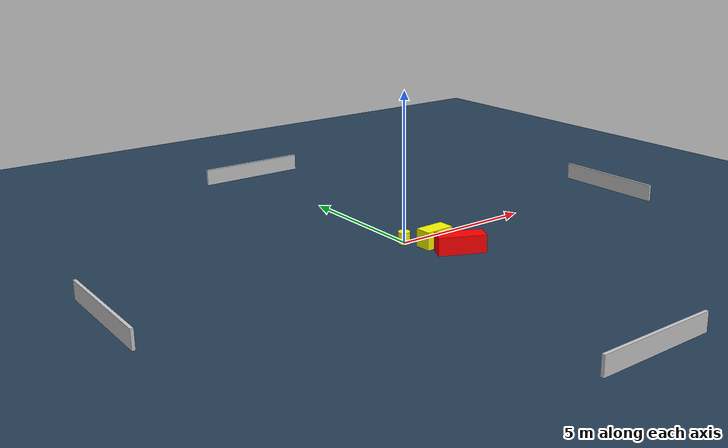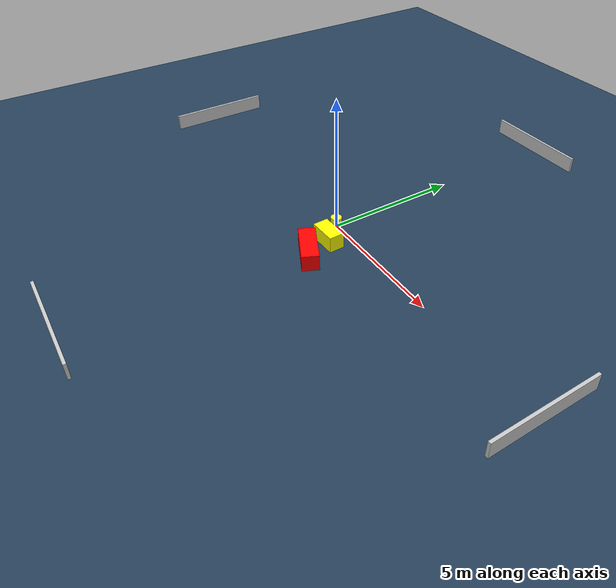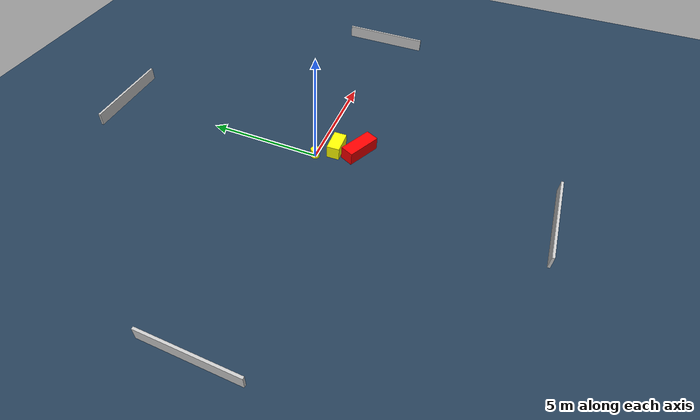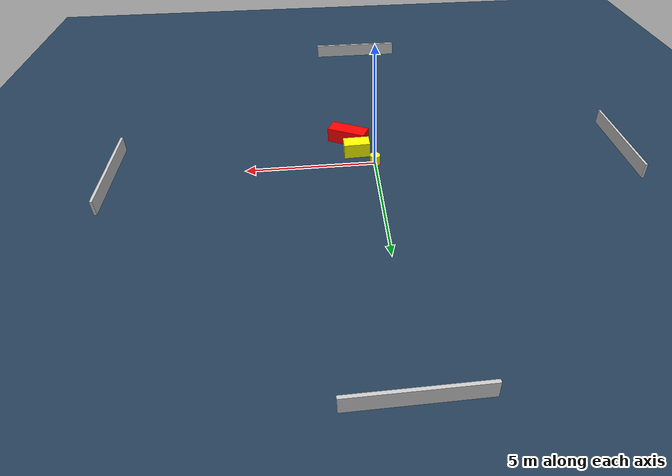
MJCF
<?xml version="1.0" ?>
<mujoco model="generated_environment">
  <option timestep="0.01" integrator="RK4" cone="elliptic"/>
  <default>
    <geom density="1"/>
  </default>
  <asset>
    <texture builtin="gradient" height="3072" name="skybox" rgb1="0.3 0.5 0.7" rgb2="0 0 0" type="skybox" width="512"/>
    <texture builtin="checker" height="300" name="groundplane" rgb1="0.2 0.3 0.4" rgb2="0.1 0.2 0.3" type="2d" width="300"/>
    <material name="groundplane" reflectance="0.2" texrepeat="5 5" texture="groundplane"/>
  </asset>
  <worldbody>
    <light dir="0 0 -1" directional="true" pos="0 0 1.5"/>
    <geom condim="3" friction="0.5 0.005 0.001" material="groundplane" name="floor" pos="0 0 0" size="0 0 0.05" type="plane"/>
    <body name="walls">
      <geom name="wall_1" condim="4" pos="-10.0 0.0 0.3" rgba="0.800000011920929 0.800000011920929 0.800000011920929 1.0" size="0.05 2.0 0.3" type="box"/>
      <geom name="wall_2" condim="4" pos="10.0 0.0 0.3" rgba="0.800000011920929 0.800000011920929 0.800000011920929 1.0" size="0.05 2.0 0.3" type="box"/>
      <geom name="wall_3" condim="4" pos="0.0 -10.0 0.3" rgba="0.800000011920929 0.800000011920929 0.800000011920929 1.0" size="2.0 0.05 0.3" type="box"/>
      <geom name="wall_4" condim="4" pos="0.0 10.0 0.3" rgba="0.800000011920929 0.800000011920929 0.800000011920929 1.0" size="2.0 0.05 0.3" type="box"/>
    </body>
    <body name="robot">
      <joint name="joint_x" type="slide" pos="0 0 0" axis="1 0 0"/>
      <joint name="joint_y" type="slide" pos="0 0 0" axis="0 1 0"/>
      <geom name="robot" type="cylinder" pos="0.0 0.0 0.2" size="0.2 0.2 0.0" mass="5.0" friction="1.0 0.005 0.0001" condim="4" rgba="1.0 1.0 0.0 1.0"/>
    </body>
    <body name="obstacle_1_movable">
      <geom name="obstacle_1_movable" condim="4" pos="0.6617849768618573 -0.7399494940437126 0.3" euler="0 0 91.86648426186764" friction="0.0 0.005 0.001" rgba="1.0 1.0 0.0 1.0" size="0.2817866467549142 0.5123800321534642 0.3" type="box" mass="0.1"/>
      <joint type="free"/>
    </body>
    <body name="obstacle_2_static">
      <geom name="obstacle_2_static" condim="4" pos="0.9291934184319594 -1.7034039919927935 0.3" euler="0 0 154.15419207729926" friction="0.0 0.005 0.001" rgba="1.0 0.0 0.0 1.0" size="0.786545263538901 0.3042098911358261 0.3" type="box"/>
    </body>
  </worldbody>
  <actuator>
    <motor name="actuator_x" joint="joint_x" gear="1" ctrlrange="-1 1"/>
    <motor name="actuator_y" joint="joint_y" gear="1" ctrlrange="-1 1"/>
  </actuator>
</mujoco>
